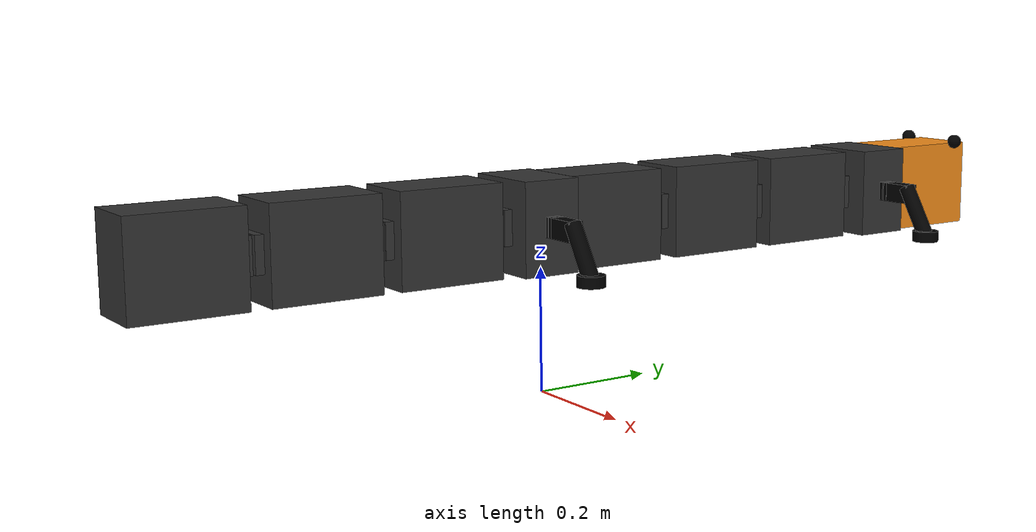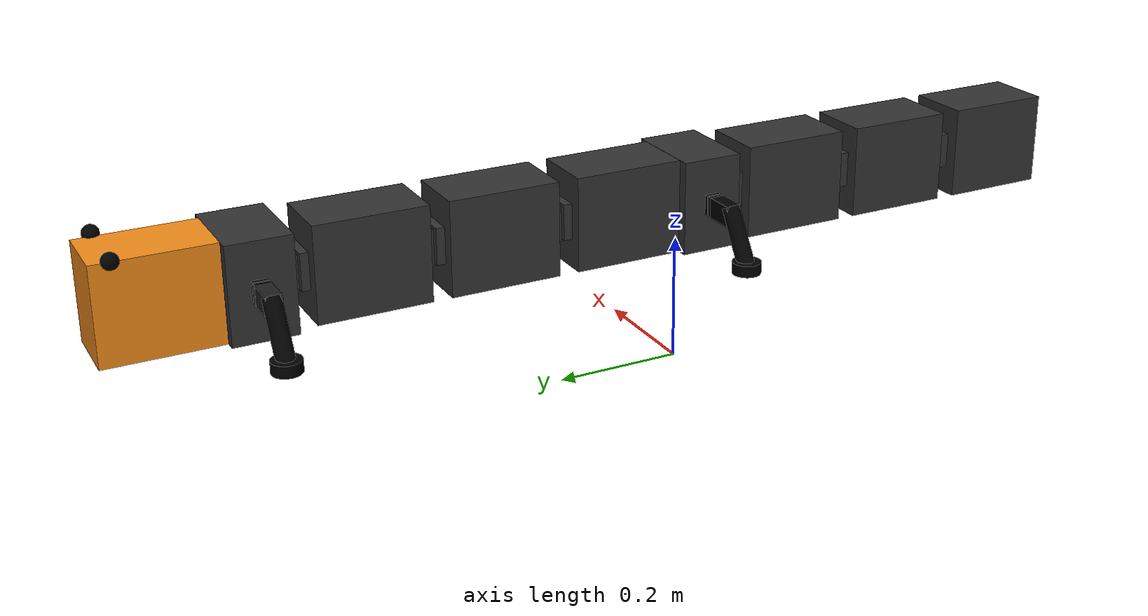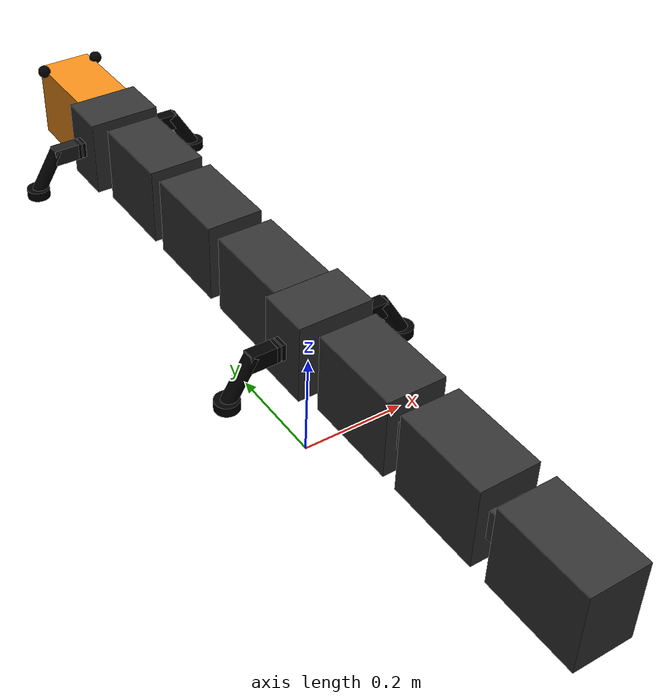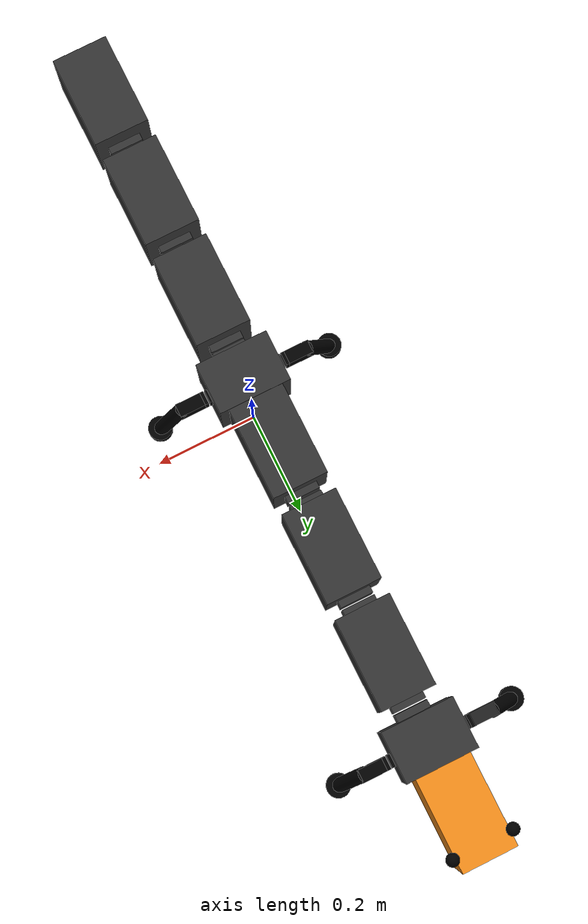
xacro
<?xml version="1.0" ?>
<robot name="rrbot" xmlns:xacro="http://www.ros.org/wiki/xacro">

  <xacro:include filename="$(find rrbot_description)/urdf/rrbot.gazebo" />
  <xacro:include filename="$(find rrbot_description)/urdf/materials.xacro"/>

  <joint name="rrbot__link_0_0_JOINT_2" type="fixed">
    <parent link="rrbot__link_0_0"/>
    <child link="rrbot__link_2_clone_1_clone"/>
    <origin rpy="0       0.54898  0" xyz="-0.03899  0.00105 -0.02898"/>
    <axis xyz="0  0  0"/>
    <limit effort="0" lower="0" upper="0" velocity="0"/>
  </joint>
  <joint name="rrbot__link_0_0_clone_0_JOINT_10" type="fixed">
    <parent link="rrbot__link_0_0_clone_0"/>
    <child link="rrbot__link_2_clone_1_clone_0_clone"/>
    <origin rpy="-4.00000000e-05  -5.49010000e-01   5.00000000e-05" xyz="-0.039    0       0.02898"/>
    <axis xyz="0  0  0"/>
    <limit effort="0" lower="0" upper="0" velocity="0"/>
  </joint>
  <joint name="rrbot__link_0_0_clone_1_JOINT_4" type="fixed">
    <parent link="rrbot__link_0_0_clone_1"/>
    <child link="rrbot__link_2_clone_1_clone_0"/>
    <origin rpy="-4.00000000e-05  -5.49010000e-01   5.00000000e-05" xyz="0.04077  0      -0.02898"/>
    <axis xyz="0  0  0"/>
    <limit effort="0" lower="0" upper="0" velocity="0"/>
  </joint>
  <joint name="rrbot__link_0_0_clone_JOINT_0" type="fixed">
    <parent link="rrbot__link_0_0_clone"/>
    <child link="rrbot__link_2_clone_1"/>
    <origin rpy="0       0.54898  0" xyz="0.03899  0.00105  0.02899"/>
    <axis xyz="0  0  0"/>
    <limit effort="0" lower="0" upper="0" velocity="0"/>
  </joint>
  <joint name="rrbot__limb_joint_1" type="continuous">
    <parent link="rrbot__link_0_0_clone_clone"/>
    <child link="rrbot__link_0_0_clone_clone_clone"/>
    <origin rpy="3.141592  0  0" xyz="0.00928  0.00016  0"/>
    <axis xyz="-1  0  0"/>

  </joint>
  <joint name="rrbot__limb_joint_2" type="continuous">
    <parent link="rrbot__link_0_0_clone_clone_clone_0"/>
    <child link="rrbot__link_0_0_clone_clone_clone_0_clone"/>
    <origin rpy="0  0  0" xyz="-0.00928  0.00016  0"/>
    <axis xyz="-1  0  0"/>

  </joint>
  <joint name="rrbot__link_0_0_clone_clone_clone_0_clone_JOINT_18" type="fixed">
    <parent link="rrbot__link_0_0_clone_clone_clone_0_clone"/>
    <child link="rrbot__link_0_0"/>
    <origin rpy="0  0  0" xyz="-0.02655 -0.00019  0"/>
    <axis xyz="0  0  0"/>
    <limit effort="0" lower="0" upper="0" velocity="0"/>
  </joint>
  <joint name="rrbot__limb_joint_3" type="continuous">
    <parent link="rrbot__link_0_0_clone_clone_clone_1"/>
    <child link="rrbot__link_0_0_clone_clone_clone_clone"/>
    <origin rpy="0  0  0" xyz="8.98000000e-03   0.00000000e+00   8.00000000e-05"/>
    <axis xyz="-1  0  0"/>

  </joint>
  <joint name="rrbot__limb_joint_4" type="continuous">
    <parent link="rrbot__link_0_0_clone_clone_clone_2"/>
    <child link="rrbot__link_0_0_clone_clone_clone_3"/>
    <origin rpy="3.141592  0  0" xyz="-0.00928  0       0"/>
    <axis xyz="-1  0  0"/>

  </joint>
  <joint name="rrbot__link_0_0_clone_clone_clone_3_JOINT_22" type="fixed">
    <parent link="rrbot__link_0_0_clone_clone_clone_3"/>
    <child link="rrbot__link_0_0_clone_0"/>
    <origin rpy="3.00000000e-05   2.00000000e-05  -3.00000000e-05" xyz="-0.02655  0       0"/>
    <axis xyz="0  0  0"/>
    <limit effort="0" lower="0" upper="0" velocity="0"/>
  </joint>
  <joint name="rrbot__link_0_0_clone_clone_clone_JOINT_16" type="fixed">
    <parent link="rrbot__link_0_0_clone_clone_clone"/>
    <child link="rrbot__link_0_0_clone"/>
    <origin rpy="0  0  0" xyz="0.02655 -0.00019  0"/>
    <axis xyz="0  0  0"/>
    <limit effort="0" lower="0" upper="0" velocity="0"/>
  </joint>
  <joint name="rrbot__link_0_0_clone_clone_clone_clone_JOINT_20" type="fixed">
    <parent link="rrbot__link_0_0_clone_clone_clone_clone"/>
    <child link="rrbot__link_0_0_clone_1"/>
    <origin rpy="3.00000000e-05   2.00000000e-05  -3.00000000e-05" xyz="2.71700000e-02   0.00000000e+00  -8.00000000e-05"/>
    <axis xyz="0  0  0"/>
    <limit effort="0" lower="0" upper="0" velocity="0"/>
  </joint>
  <joint name="rrbot__link_0_JOINT_0_0" type="fixed">
    <parent link="rrbot__link_0"/>
    <child link="rrbot__link_3"/>
    <origin rpy="1.00000000e-05   1.00000000e-05  -1.00000000e-05" xyz="-0.05636  0.86928  0.349901"/>
    <axis xyz="0  0  0"/>
    <limit effort="0" lower="0" upper="0" velocity="0"/>
  </joint>
  <joint name="rrbot__link_0_JOINT_0" type="fixed">
    <parent link="rrbot__link_0"/>
    <child link="rrbot__link_0_clone"/>
    <origin rpy="0  0  0" xyz="-4.00000000e-05   6.77990000e-01   0.273561"/>
    <axis xyz="0  0  0"/>
    <limit effort="0" lower="0" upper="0" velocity="0"/>
  </joint>
  <joint name="rrbot__link_0_JOINT_1" type="fixed">
    <parent link="rrbot__link_0"/>
    <child link="rrbot__link_3_clone"/>
    <origin rpy="3.00000000e-05   2.00000000e-05  -3.00000000e-05" xyz="0.05636  0.86928  0.349901"/>
    <axis xyz="0  0  0"/>
    <limit effort="0" lower="0" upper="0" velocity="0"/>
  </joint>
  <joint name="rrbot__link_0_clone_0_JOINT_2_0" type="fixed">
    <parent link="rrbot__link_0_clone_0"/>
    <child link="rrbot__link_0_clone_6_clone_0"/>
    <origin rpy="0       0      -0.00248" xyz="0      -0.09086  0"/>
    <axis xyz="0  0  0"/>
    <limit effort="0" lower="0" upper="0" velocity="0"/>
  </joint>
  <joint name="rrbot__link_0_clone_1_JOINT_4" type="fixed">
    <parent link="rrbot__link_0_clone_1"/>
    <child link="rrbot__link_0_clone_6_clone_2"/>
    <origin rpy="0       0      -0.00248" xyz="0      -0.09257  0"/>
    <axis xyz="0  0  0"/>
    <limit effort="0" lower="0" upper="0" velocity="0"/>
  </joint>
  <joint name="rrbot__link_0_clone_2_JOINT_8" type="fixed">
    <parent link="rrbot__link_0_clone_2"/>
    <child link="rrbot__link_0_clone_clone"/>
    <origin rpy="1.00000000e-05   1.00000000e-05  -1.00000000e-05" xyz="0      -0.13431  0"/>
    <axis xyz="0  0  0"/>
    <limit effort="0" lower="0" upper="0" velocity="0"/>
  </joint>
  <joint name="rrbot__link_0_clone_3_JOINT_9" type="fixed">
    <parent link="rrbot__link_0_clone_3"/>
    <child link="rrbot__link_0_clone_6_clone_6"/>
    <origin rpy="0       0      -0.00248" xyz="0      -0.09278  0"/>
    <axis xyz="0  0  0"/>
    <limit effort="0" lower="0" upper="0" velocity="0"/>
  </joint>
  <joint name="rrbot__link_0_clone_4_JOINT_11" type="fixed">
    <parent link="rrbot__link_0_clone_4"/>
    <child link="rrbot__link_0_clone_6_clone_8"/>
    <origin rpy="0       0      -0.00248" xyz="0     -0.0927  0"/>
    <axis xyz="0  0  0"/>
    <limit effort="0" lower="0" upper="0" velocity="0"/>
  </joint>
  <joint name="rrbot__body_joint_1" type="revolute">
    <parent link="rrbot__link_0_clone_6"/>
    <child link="rrbot__link_0_clone_6_clone"/>
    <origin rpy="0       0      0" xyz="-2.00000000e-05  -1.70600000e-02   0.00000000e+00"/>
    <axis xyz="0  0  1"/>
    <limit effort="2.0" lower="-0.4" upper="0.4" velocity="1.0"/>
  </joint>
  <joint name="rrbot__body_joint_2" type="revolute">
    <parent link="rrbot__link_0_clone_6_clone_0"/>
    <child link="rrbot__link_0_clone_6_clone_1"/>
    <origin rpy="0  0  0" xyz="4.00000000e-05  -1.79300000e-02   0.00000000e+00"/>
    <axis xyz="0  0  1"/>
    <limit effort="2.0" lower="-0.4" upper="0.4" velocity="1.0"/>
  </joint>
  <joint name="rrbot__link_0_clone_6_clone_1_JOINT_3" type="fixed">
    <parent link="rrbot__link_0_clone_6_clone_1"/>
    <child link="rrbot__link_0_clone_1"/>
    <origin rpy="0       0       0.00248" xyz="0.00023 -0.0925   0"/>
    <axis xyz="0  0  0"/>
    <limit effort="0" lower="0" upper="0" velocity="0"/>
  </joint>
  <joint name="rrbot__body_joint_3" type="revolute">
    <parent link="rrbot__link_0_clone_6_clone_2"/>
    <child link="rrbot__link_0_clone_6_clone_3"/>
    <origin rpy="0  0  0" xyz="4.00000000e-05  -1.81600000e-02   0.00000000e+00"/>
    <axis xyz="0  0  1"/>
    <limit effort="2.0" lower="-0.4" upper="0.4" velocity="1.0"/>
  </joint>
  <joint name="rrbot__link_0_clone_6_clone_3_JOINT_6" type="fixed">
    <parent link="rrbot__link_0_clone_6_clone_3"/>
    <child link="rrbot__link_0_clone_2"/>
    <origin rpy="0       0       0.00248" xyz="0.00022 -0.0922   0"/>
    <axis xyz="0  0  0"/>
    <limit effort="0" lower="0" upper="0" velocity="0"/>
  </joint>
  <joint name="rrbot__body_joint_4" type="revolute">
    <parent link="rrbot__link_0_clone_6_clone_4"/>
    <child link="rrbot__link_0_clone_6_clone_5"/>
    <origin rpy="0  0  0" xyz="3.00000000e-05  -1.57100000e-02   0.00000000e+00"/>
    <axis xyz="0  0  1"/>
    <limit effort="2.0" lower="-0.523" upper="0.523" velocity="1.0"/>
  </joint>
  <joint name="rrbot__link_0_clone_6_clone_5_JOINT_8" type="fixed">
    <parent link="rrbot__link_0_clone_6_clone_5"/>
    <child link="rrbot__link_0_clone_3"/>
    <origin rpy="0       0       0.00248" xyz="0.00023 -0.0928   0"/>
    <axis xyz="0  0  0"/>
    <limit effort="0" lower="0" upper="0" velocity="0"/>
  </joint>
  <joint name="rrbot__body_joint_5" type="revolute">
    <parent link="rrbot__link_0_clone_6_clone_6"/>
    <child link="rrbot__link_0_clone_6_clone_7"/>
    <origin rpy="0  0  0" xyz="3.00000000e-05  -1.57500000e-02   0.00000000e+00"/>
    <axis xyz="0  0  1"/>
    <limit effort="1.0" lower="-0.523" upper="0.523" velocity="1.0"/>
  </joint>
  <joint name="rrbot__link_0_clone_6_clone_7_JOINT_10" type="fixed">
    <parent link="rrbot__link_0_clone_6_clone_7"/>
    <child link="rrbot__link_0_clone_4"/>
    <origin rpy="0       0       0.00248" xyz="0.00022 -0.09222  0"/>
    <axis xyz="0  0  0"/>
    <limit effort="0" lower="0" upper="0" velocity="0"/>
  </joint>
  <joint name="rrbot__body_joint_6" type="revolute">
    <parent link="rrbot__link_0_clone_6_clone_8"/>
    <child link="rrbot__link_0_clone_6_clone_9"/>
    <origin rpy="0  0  0" xyz="4.00000000e-05  -1.75300000e-02   0.00000000e+00"/>
    <axis xyz="0  0  1"/>
    <limit effort="1.0" lower="-0.523" upper="0.523" velocity="1.0"/>
  </joint>
  <joint name="rrbot__link_0_clone_6_clone_9_JOINT_12" type="fixed">
    <parent link="rrbot__link_0_clone_6_clone_9"/>
    <child link="rrbot__link_0_clone_5"/>
    <origin rpy="0       0       0.00248" xyz="0.00023 -0.09266  0"/>
    <axis xyz="0  0  0"/>
    <limit effort="0" lower="0" upper="0" velocity="0"/>
  </joint>
  <joint name="rrbot__link_0_clone_6_clone_JOINT_1" type="fixed">
    <parent link="rrbot__link_0_clone_6_clone"/>
    <child link="rrbot__link_0_clone_0"/>
    <origin rpy="0       0       0.00248" xyz="-0.00076 -0.09177  0"/>
    <axis xyz="0  0  0"/>
    <limit effort="0" lower="0" upper="0" velocity="0"/>
  </joint>
  <joint name="rrbot__link_0_clone_JOINT_0_0" type="fixed">
    <parent link="rrbot__link_0_clone"/>
    <child link="rrbot__link_0_clone_6"/>
    <origin rpy="0       0      -0.00124" xyz="0.00103 -0.05492  0"/>
    <axis xyz="0  0  0"/>
    <limit effort="0" lower="0" upper="0" velocity="0"/>
  </joint>
  <joint name="rrbot__link_0_clone_JOINT_0" type="fixed">
    <parent link="rrbot__link_0_clone"/>
    <child link="rrbot__link_0_0_clone_clone_clone_0"/>
    <origin rpy="0  0  0" xyz="-0.07139  0.00369  0.00213"/>
    <axis xyz="0  0  0"/>
    <limit effort="0" lower="0" upper="0" velocity="0"/>
  </joint>
  <joint name="rrbot__link_0_clone_JOINT_3" type="fixed">
    <parent link="rrbot__link_0_clone"/>
    <child link="rrbot__link_0_0_clone_clone"/>
    <origin rpy="0  0  0" xyz="0.07148  0.00369  0.00213"/>
    <axis xyz="0  0  0"/>
    <limit effort="0" lower="0" upper="0" velocity="0"/>
  </joint>
  <joint name="rrbot__link_0_clone_clone_JOINT_0" type="fixed">
    <parent link="rrbot__link_0_clone_clone"/>
    <child link="rrbot__link_0_0_clone_clone_clone_2"/>
    <origin rpy="-1.00000000e-05  -1.00000000e-05   1.00000000e-05" xyz="-0.07139  0.00078  0.00212"/>
    <axis xyz="0  0  0"/>
    <limit effort="0" lower="0" upper="0" velocity="0"/>
  </joint>
  <joint name="rrbot__link_0_clone_clone_JOINT_12" type="fixed">
    <parent link="rrbot__link_0_clone_clone"/>
    <child link="rrbot__link_0_0_clone_clone_clone_1"/>
    <origin rpy="-1.00000000e-05  -1.00000000e-05   1.00000000e-05" xyz="0.06938  0.00078  0.00213"/>
    <axis xyz="0  0  0"/>
    <limit effort="0" lower="0" upper="0" velocity="0"/>
  </joint>
  <joint name="rrbot__link_0_clone_clone_JOINT_7" type="fixed">
    <parent link="rrbot__link_0_clone_clone"/>
    <child link="rrbot__link_0_clone_6_clone_4"/>
    <origin rpy="-2.00000000e-05  -1.00000000e-05  -2.46000000e-03" xyz="0      -0.05485  0"/>
    <axis xyz="0  0  0"/>
    <limit effort="0" lower="0" upper="0" velocity="0"/>
  </joint>
  <joint name="rrbot__link_2_clone_1_JOINT_1" type="fixed">
    <parent link="rrbot__link_2_clone_1"/>
    <child link="rrbot__link_2_clone"/>
    <origin rpy="0      -0.54898  0" xyz="-0.00056  0       0.04497"/>
    <axis xyz="0  0  0"/>
    <limit effort="0" lower="0" upper="0" velocity="0"/>
  </joint>
  <joint name="rrbot__link_2_clone_1_clone_0_JOINT_5" type="fixed">
    <parent link="rrbot__link_2_clone_1_clone_0"/>
    <child link="rrbot__link_2_clone_clone_0"/>
    <origin rpy="0       0.54899  0" xyz="-0.00057  0      -0.04497"/>
    <axis xyz="0  0  0"/>
    <limit effort="0" lower="0" upper="0" velocity="0"/>
  </joint>
  <joint name="rrbot__link_2_clone_1_clone_0_clone_JOINT_11" type="fixed">
    <parent link="rrbot__link_2_clone_1_clone_0_clone"/>
    <child link="rrbot__link_2_clone_clone_0_clone"/>
    <origin rpy="0       0.54899  0" xyz="0.00056  0       0.04497"/>
    <axis xyz="0  0  0"/>
    <limit effort="0" lower="0" upper="0" velocity="0"/>
  </joint>
  <joint name="rrbot__link_2_clone_1_clone_JOINT_3" type="fixed">
    <parent link="rrbot__link_2_clone_1_clone"/>
    <child link="rrbot__link_2_clone_clone"/>
    <origin rpy="0      -0.54898  0" xyz="0.00057  0      -0.04497"/>
    <axis xyz="0  0  0"/>
    <limit effort="0" lower="0" upper="0" velocity="0"/>
  </joint>

  <link name="rrbot__link_0">
    <inertial>
      <mass value="0.7"/>
      <origin rpy="0  0  0" xyz="-4.00000000e-05   8.11790000e-01   0.273561"/>
      <inertia ixx="0.003" ixy="0" ixz="0" iyy="0.00189" iyz="0" izz="0.00224"/>
    </inertial>
    <collision name="rrbot__collision">
      <origin rpy="0  0  0" xyz="-4.00000000e-05   8.11790000e-01   0.273561"/>
      <geometry>
        <box size="0.103506 0.172189 0.147122"/>
      </geometry>
    </collision>
    <visual name="rrbot__visual">
      <origin rpy="0  0  0" xyz="-4.00000000e-05   8.11790000e-01   0.273561"/>
      <geometry>
        <box size="0.103506 0.172189 0.147122"/>
      </geometry>
    </visual>
  </link>

  <link name="rrbot__link_0_0">
    <inertial>
      <mass value="0.04"/>
      <origin rpy="0  0  0" xyz="0  0  0"/>
      <inertia ixx="5.3e-06" ixy="0" ixz="0" iyy="1.2e-05" iyz="0" izz="1e-05"/>
    </inertial>
    <collision name="rrbot__collision">
      <origin rpy="0  0  0" xyz="0  0  0"/>
      <geometry>
        <box size="0.047498 0.023913 0.031645"/>
      </geometry>
    </collision>
    <visual name="rrbot__visual">
      <origin rpy="0  0  0" xyz="0  0  0"/>
      <geometry>
        <box size="0.047498 0.023913 0.031645"/>
      </geometry>
    </visual>
  </link>
  <link name="rrbot__link_0_0_clone">
    <inertial>
      <mass value="0.04"/>
      <origin rpy="0  0  0" xyz="0  0  0"/>
      <inertia ixx="5.3e-06" ixy="0" ixz="0" iyy="1.2e-05" iyz="0" izz="1e-05"/>
    </inertial>
    <collision name="rrbot__collision">
      <origin rpy="0  0  0" xyz="0  0  0"/>
      <geometry>
        <box size="0.047498 0.023913 0.031645"/>
      </geometry>
    </collision>
    <visual name="rrbot__visual_0">
      <origin rpy="0  0  0" xyz="0  0  0"/>
      <geometry>
        <box size="0.047498 0.023913 0.031645"/>
      </geometry>
      <material name="black"/>
    </visual>
  </link>
  <link name="rrbot__link_0_0_clone_0">
    <inertial>
      <mass value="0.04"/>
      <origin rpy="0  0  0" xyz="0  0  0"/>
      <inertia ixx="5.3e-06" ixy="0" ixz="0" iyy="1.2e-05" iyz="0" izz="1e-05"/>
    </inertial>
    <collision name="rrbot__collision">
      <origin rpy="0  0  0" xyz="0  0  0"/>
      <geometry>
        <box size="0.047498 0.023913 0.031645"/>
      </geometry>
    </collision>
    <visual name="rrbot__visual_0">
      <origin rpy="0  0  0" xyz="0  0  0"/>
      <geometry>
        <box size="0.047498 0.023913 0.031645"/>
      </geometry>
      <material name="black"/>
    </visual>
  </link>
  <link name="rrbot__link_0_0_clone_1">
    <inertial>
      <mass value="0.04"/>
      <origin rpy="0  0  0" xyz="0  0  0"/>
      <inertia ixx="5.3e-06" ixy="0" ixz="0" iyy="1.2e-05" iyz="0" izz="1e-05"/>
    </inertial>
    <collision name="rrbot__collision">
      <origin rpy="0  0  0" xyz="0  0  0"/>
      <geometry>
        <box size="0.047498 0.023913 0.031645"/>
      </geometry>
    </collision>
    <visual name="rrbot__visual_0">
      <origin rpy="0  0  0" xyz="0  0  0"/>
      <geometry>
        <box size="0.047498 0.023913 0.031645"/>
      </geometry>
      <material name="black"/>
    </visual>
  </link>
  <link name="rrbot__link_0_0_clone_clone">
    <inertial>
      <mass value="0.005"/>
      <origin rpy="0  0  0" xyz="0  0  0"/>
      <inertia ixx="6.6e-07" ixy="0" ixz="0" iyy="4.6e-07" iyz="0" izz="2.5e-07"/>
    </inertial>
    <collision name="rrbot__collision">
      <origin rpy="0  0  0" xyz="0  0  0"/>
      <geometry>
        <box size="0.00666 0.023913 0.031645"/>
      </geometry>
    </collision>
    <visual name="rrbot__visual_0">
      <origin rpy="0  0  0" xyz="0  0  0"/>
      <geometry>
        <box size="0.00666 0.023913 0.031645"/>
      </geometry>
      <material name="black"/>
    </visual>
  </link>
  <link name="rrbot__link_0_0_clone_clone_clone">
    <inertial>
      <mass value="0.005"/>
      <origin rpy="0  0  0" xyz="0  0  0"/>
      <inertia ixx="6.6e-07" ixy="0" ixz="0" iyy="4.6e-07" iyz="0" izz="2.5e-07"/>
    </inertial>
    <collision name="rrbot__collision">
      <origin rpy="0  0  0" xyz="0  0  0"/>
      <geometry>
        <box size="0.00666 0.023913 0.031645"/>
      </geometry>
    </collision>
    <visual name="rrbot__visual_0">
      <origin rpy="0  0  0" xyz="0  0  0"/>
      <geometry>
        <box size="0.00666 0.023913 0.031645"/>
      </geometry>
      <material name="black"/>
    </visual>
  </link>
  <link name="rrbot__link_0_0_clone_clone_clone_0">
    <inertial>
      <mass value="0.005"/>
      <origin rpy="0  0  0" xyz="0  0  0"/>
      <inertia ixx="6.6e-07" ixy="0" ixz="0" iyy="4.6e-07" iyz="0" izz="2.5e-07"/>
    </inertial>
    <collision name="rrbot__collision">
      <origin rpy="0  0  0" xyz="0  0  0"/>
      <geometry>
        <box size="0.00666 0.023913 0.031645"/>
      </geometry>
    </collision>
    <visual name="rrbot__visual_0">
      <origin rpy="0  0  0" xyz="0  0  0"/>
      <geometry>
        <box size="0.00666 0.023913 0.031645"/>
      </geometry>
      <material name="black"/>
    </visual>
  </link>
  <link name="rrbot__link_0_0_clone_clone_clone_0_clone">
    <inertial>
      <mass value="0.005"/>
      <origin rpy="0  0  0" xyz="0  0  0"/>
      <inertia ixx="6.6e-07" ixy="0" ixz="0" iyy="4.6e-07" iyz="0" izz="2.5e-07"/>
    </inertial>
    <collision name="rrbot__collision">
      <origin rpy="0  0  0" xyz="0  0  0"/>
      <geometry>
        <box size="0.00666 0.023913 0.031645"/>
      </geometry>
    </collision>
    <visual name="rrbot__visual_0">
      <origin rpy="0  0  0" xyz="0  0  0"/>
      <geometry>
        <box size="0.00666 0.023913 0.031645"/>
      </geometry>
      <material name="black"/>
    </visual>
  </link>
  <link name="rrbot__link_0_0_clone_clone_clone_1">
    <inertial>
      <mass value="0.005"/>
      <origin rpy="0  0  0" xyz="0  0  0"/>
      <inertia ixx="6.6e-07" ixy="0" ixz="0" iyy="4.6e-07" iyz="0" izz="2.5e-07"/>
    </inertial>
    <collision name="rrbot__collision">
      <origin rpy="0  0  0" xyz="0  0  0"/>
      <geometry>
        <box size="0.00666 0.023913 0.031645"/>
      </geometry>
    </collision>
    <visual name="rrbot__visual_0">
      <origin rpy="0  0  0" xyz="0  0  0"/>
      <geometry>
        <box size="0.00666 0.023913 0.031645"/>
      </geometry>
      <material name="black"/>
    </visual>
  </link>
  <link name="rrbot__link_0_0_clone_clone_clone_2">
    <inertial>
      <mass value="0.005"/>
      <origin rpy="0  0  0" xyz="0  0  0"/>
      <inertia ixx="6.6e-07" ixy="0" ixz="0" iyy="4.6e-07" iyz="0" izz="2.5e-07"/>
    </inertial>
    <collision name="rrbot__collision">
      <origin rpy="0  0  0" xyz="0  0  0"/>
      <geometry>
        <box size="0.00666 0.023913 0.031645"/>
      </geometry>
    </collision>
    <visual name="rrbot__visual_0">
      <origin rpy="0  0  0" xyz="0  0  0"/>
      <geometry>
        <box size="0.00666 0.023913 0.031645"/>
      </geometry>
      <material name="black"/>
    </visual>
  </link>
  <link name="rrbot__link_0_0_clone_clone_clone_3">
    <inertial>
      <mass value="0.005"/>
      <origin rpy="0  0  0" xyz="0  0  0"/>
      <inertia ixx="6.6e-07" ixy="0" ixz="0" iyy="4.6e-07" iyz="0" izz="2.5e-07"/>
    </inertial>
    <collision name="rrbot__collision">
      <origin rpy="0  0  0" xyz="0  0  0"/>
      <geometry>
        <box size="0.00666 0.023913 0.031645"/>
      </geometry>
    </collision>
    <visual name="rrbot__visual_0">
      <origin rpy="0  0  0" xyz="0  0  0"/>
      <geometry>
        <box size="0.00666 0.023913 0.031645"/>
      </geometry>
      <material name="black"/>
    </visual>
  </link>
  <link name="rrbot__link_0_0_clone_clone_clone_clone">
    <inertial>
      <mass value="0.005"/>
      <origin rpy="0  0  0" xyz="0  0  0"/>
      <inertia ixx="6.6e-07" ixy="0" ixz="0" iyy="4.6e-07" iyz="0" izz="2.5e-07"/>
    </inertial>
    <collision name="rrbot__collision">
      <origin rpy="0  0  0" xyz="0  0  0"/>
      <geometry>
        <box size="0.00666 0.023913 0.031645"/>
      </geometry>
    </collision>
    <visual name="rrbot__visual_0">
      <origin rpy="0  0  0" xyz="0  0  0"/>
      <geometry>
        <box size="0.00666 0.023913 0.031645"/>
      </geometry>
      <material name="black"/>
    </visual>
  </link>
  <link name="rrbot__link_0_clone">
    <inertial>
      <mass value="0.2"/>
      <origin rpy="0  0  0" xyz="0  0  0"/>
      <inertia ixx="0.00054" ixy="0" ixz="0" iyy="0.000684" iyz="0" izz="0.000476"/>
    </inertial>
    <collision name="rrbot__collision">
      <origin rpy="0  0  0" xyz="0  0  0"/>
      <geometry>
        <box size="0.13585 0.095615 0.147122"/>
      </geometry>
    </collision>
    <visual name="rrbot__visual">
      <origin rpy="0  0  0" xyz="0  0  0"/>
      <geometry>
        <box size="0.13585 0.095615 0.147122"/>
      </geometry>
      <material name="grey"/>
    </visual>
  </link>
  <link name="rrbot__link_0_clone_0">
    <inertial>
      <mass value="0.3"/>
      <origin rpy="0  0  0" xyz="0  0  0"/>
      <inertia ixx="0.0013" ixy="0" ixz="0" iyy="0.00081" iyz="0" izz="0.001"/>
    </inertial>
    <collision name="rrbot__collision">
      <origin rpy="0  0  0" xyz="0  0  0"/>
      <geometry>
        <box size="0.103506 0.172189 0.147122"/>
      </geometry>
    </collision>
    <visual name="rrbot__visual">
      <origin rpy="0  0  0" xyz="0  0  0"/>
      <geometry>
        <box size="0.103506 0.172189 0.147122"/>
      </geometry>
      <material name="grey"/>
    </visual>
  </link>
  <link name="rrbot__link_0_clone_1">
    <inertial>
      <mass value="0.2"/>
      <origin rpy="0  0  0" xyz="0  0  0"/>
      <inertia ixx="0.00086" ixy="0" ixz="0" iyy="0.00054" iyz="0" izz="0.00065"/>
    </inertial>
    <collision name="rrbot__collision">
      <origin rpy="0  0  0" xyz="0  0  0"/>
      <geometry>
        <box size="0.103506 0.172189 0.147122"/>
      </geometry>
    </collision>
    <visual name="rrbot__visual">
      <origin rpy="0  0  0" xyz="0  0  0"/>
      <geometry>
        <box size="0.103506 0.172189 0.147122"/>
      </geometry>
      <material name="grey"/>
    </visual>
  </link>
  <link name="rrbot__link_0_clone_2">
    <inertial>
      <mass value="0.2"/>
      <origin rpy="0  0  0" xyz="0  0  0"/>
      <inertia ixx="0.00086" ixy="0" ixz="0" iyy="0.00054" iyz="0" izz="0.00065"/>
    </inertial>
    <collision name="rrbot__collision">
      <origin rpy="0  0  0" xyz="0  0  0"/>
      <geometry>
        <box size="0.103506 0.172189 0.147122"/>
      </geometry>
    </collision>
    <visual name="rrbot__visual">
      <origin rpy="0  0  0" xyz="0  0  0"/>
      <geometry>
        <box size="0.103506 0.172189 0.147122"/>
      </geometry>
      <material name="grey"/>
    </visual>
  </link>
  <link name="rrbot__link_0_clone_3">
    <inertial>
      <mass value="0.15"/>
      <origin rpy="0  0  0" xyz="0  0  0"/>
      <inertia ixx="0.00064" ixy="0" ixz="0" iyy="0.00041" iyz="0" izz="0.00049"/>
    </inertial>
    <collision name="rrbot__collision">
      <origin rpy="0  0  0" xyz="0  0  0"/>
      <geometry>
        <box size="0.103506 0.172189 0.147122"/>
      </geometry>
    </collision>
    <visual name="rrbot__visual">
      <origin rpy="0  0  0" xyz="0  0  0"/>
      <geometry>
        <box size="0.103506 0.172189 0.147122"/>
      </geometry>
      <material name="grey"/>
    </visual>
  </link>
  <link name="rrbot__link_0_clone_4">
    <inertial>
      <mass value="0.15"/>
      <origin rpy="0  0  0" xyz="0  0  0"/>
      <inertia ixx="0.00064" ixy="0" ixz="0" iyy="0.00041" iyz="0" izz="0.00049"/>
    </inertial>
    <collision name="rrbot__collision">
      <origin rpy="0  0  0" xyz="0  0  0"/>
      <geometry>
        <box size="0.103506 0.172189 0.147122"/>
      </geometry>
    </collision>
    <visual name="rrbot__visual">
      <origin rpy="0  0  0" xyz="0  0  0"/>
      <geometry>
        <box size="0.103506 0.172189 0.147122"/>
      </geometry>
      <material name="grey"/>
    </visual>
  </link>
  <link name="rrbot__link_0_clone_5">
    <inertial>
      <mass value="0.15"/>
      <origin rpy="0  0  0" xyz="0  0  0"/>
      <inertia ixx="0.00064" ixy="0" ixz="0" iyy="0.00041" iyz="0" izz="0.00049"/>
    </inertial>
    <collision name="rrbot__collision">
      <origin rpy="0  0  0" xyz="0  0  0"/>
      <geometry>
        <box size="0.103506 0.172189 0.147122"/>
      </geometry>
    </collision>
    <visual name="rrbot__visual">
      <origin rpy="0  0  0" xyz="0  0  0"/>
      <geometry>
        <box size="0.103506 0.172189 0.147122"/>
      </geometry>
      <material name="grey"/>
    </visual>
  </link>
  <link name="rrbot__link_0_clone_6">
    <inertial>
      <mass value="0.01"/>
      <origin rpy="0  0  0" xyz="0  0  0"/>
      <inertia ixx="2.7e-06" ixy="0" ixz="0" iyy="5.8e-06" iyz="0" izz="3.5e-06"/>
    </inertial>
    <collision name="rrbot__collision">
      <origin rpy="0  0  0" xyz="0  0  0"/>
      <geometry>
        <box size="0.061873 0.013761 0.056246"/>
      </geometry>
    </collision>
    <visual name="rrbot__visual">
      <origin rpy="0  0  0" xyz="0  0  0"/>
      <geometry>
        <box size="0.061873 0.013761 0.056246"/>
      </geometry>
      <material name="grey"/>
    </visual>
  </link>
  <link name="rrbot__link_0_clone_6_clone">
    <inertial>
      <mass value="0.01"/>
      <origin rpy="0  0  0" xyz="0  0  0"/>
      <inertia ixx="2.7e-06" ixy="0" ixz="0" iyy="5.8e-06" iyz="0" izz="3.5e-06"/>
    </inertial>
    <collision name="rrbot__collision">
      <origin rpy="0  0  0" xyz="0  0  0"/>
      <geometry>
        <box size="0.061873 0.013761 0.056246"/>
      </geometry>
    </collision>
    <visual name="rrbot__visual">
      <origin rpy="0  0  0" xyz="0  0  0"/>
      <geometry>
        <box size="0.061873 0.013761 0.056246"/>
      </geometry>
      <material name="grey"/>
    </visual>
  </link>
  <link name="rrbot__link_0_clone_6_clone_0">
    <inertial>
      <mass value="0.01"/>
      <origin rpy="0  0  0" xyz="0  0  0"/>
      <inertia ixx="2.7e-06" ixy="0" ixz="0" iyy="5.8e-06" iyz="0" izz="3.5e-06"/>
    </inertial>
    <collision name="rrbot__collision">
      <origin rpy="0  0  0" xyz="0  0  0"/>
      <geometry>
        <box size="0.061873 0.013761 0.056246"/>
      </geometry>
    </collision>
    <visual name="rrbot__visual">
      <origin rpy="0  0  0" xyz="0  0  0"/>
      <geometry>
        <box size="0.061873 0.013761 0.056246"/>
      </geometry>
      <material name="grey"/>
    </visual>
  </link>
  <link name="rrbot__link_0_clone_6_clone_1">
    <inertial>
      <mass value="0.01"/>
      <origin rpy="0  0  0" xyz="0  0  0"/>
      <inertia ixx="2.7e-06" ixy="0" ixz="0" iyy="5.8e-06" iyz="0" izz="3.5e-06"/>
    </inertial>
    <collision name="rrbot__collision">
      <origin rpy="0  0  0" xyz="0  0  0"/>
      <geometry>
        <box size="0.061873 0.013761 0.056246"/>
      </geometry>
    </collision>
    <visual name="rrbot__visual">
      <origin rpy="0  0  0" xyz="0  0  0"/>
      <geometry>
        <box size="0.061873 0.013761 0.056246"/>
      </geometry>
      <material name="grey"/>
    </visual>
  </link>
  <link name="rrbot__link_0_clone_6_clone_2">
    <inertial>
      <mass value="0.01"/>
      <origin rpy="0  0  0" xyz="0  0  0"/>
      <inertia ixx="2.7e-06" ixy="0" ixz="0" iyy="5.8e-06" iyz="0" izz="3.5e-06"/>
    </inertial>
    <collision name="rrbot__collision">
      <origin rpy="0  0  0" xyz="0  0  0"/>
      <geometry>
        <box size="0.061873 0.013761 0.056246"/>
      </geometry>
    </collision>
    <visual name="rrbot__visual">
      <origin rpy="0  0  0" xyz="0  0  0"/>
      <geometry>
        <box size="0.061873 0.013761 0.056246"/>
      </geometry>
      <material name="grey"/>
    </visual>
  </link>
  <link name="rrbot__link_0_clone_6_clone_3">
    <inertial>
      <mass value="0.01"/>
      <origin rpy="0  0  0" xyz="0  0  0"/>
      <inertia ixx="2.7e-06" ixy="0" ixz="0" iyy="5.8e-06" iyz="0" izz="3.5e-06"/>
    </inertial>
    <collision name="rrbot__collision">
      <origin rpy="0  0  0" xyz="0  0  0"/>
      <geometry>
        <box size="0.061873 0.013761 0.056246"/>
      </geometry>
    </collision>
    <visual name="rrbot__visual">
      <origin rpy="0  0  0" xyz="0  0  0"/>
      <geometry>
        <box size="0.061873 0.013761 0.056246"/>
      </geometry>
      <material name="grey"/>
    </visual>
  </link>
  <link name="rrbot__link_0_clone_6_clone_4">
    <inertial>
      <mass value="0.01"/>
      <origin rpy="0  0  0" xyz="0  0  0"/>
      <inertia ixx="2.7e-06" ixy="0" ixz="0" iyy="5.8e-06" iyz="0" izz="3.5e-06"/>
    </inertial>
    <collision name="rrbot__collision">
      <origin rpy="0  0  0" xyz="0  0  0"/>
      <geometry>
        <box size="0.061873 0.013761 0.056246"/>
      </geometry>
    </collision>
    <visual name="rrbot__visual">
      <origin rpy="0  0  0" xyz="0  0  0"/>
      <geometry>
        <box size="0.061873 0.013761 0.056246"/>
      </geometry>
      <material name="grey"/>
    </visual>
  </link>
  <link name="rrbot__link_0_clone_6_clone_5">
    <inertial>
      <mass value="0.01"/>
      <origin rpy="0  0  0" xyz="0  0  0"/>
      <inertia ixx="2.7e-06" ixy="0" ixz="0" iyy="5.8e-06" iyz="0" izz="3.5e-06"/>
    </inertial>
    <collision name="rrbot__collision">
      <origin rpy="0  0  0" xyz="0  0  0"/>
      <geometry>
        <box size="0.061873 0.013761 0.056246"/>
      </geometry>
    </collision>
    <visual name="rrbot__visual">
      <origin rpy="0  0  0" xyz="0  0  0"/>
      <geometry>
        <box size="0.061873 0.013761 0.056246"/>
      </geometry>
      <material name="grey"/>
    </visual>
  </link>
  <link name="rrbot__link_0_clone_6_clone_6">
    <inertial>
      <mass value="0.01"/>
      <origin rpy="0  0  0" xyz="0  0  0"/>
      <inertia ixx="2.7e-06" ixy="0" ixz="0" iyy="5.8e-06" iyz="0" izz="3.5e-06"/>
    </inertial>
    <collision name="rrbot__collision">
      <origin rpy="0  0  0" xyz="0  0  0"/>
      <geometry>
        <box size="0.061873 0.013761 0.056246"/>
      </geometry>
    </collision>
    <visual name="rrbot__visual">
      <origin rpy="0  0  0" xyz="0  0  0"/>
      <geometry>
        <box size="0.061873 0.013761 0.056246"/>
      </geometry>
      <material name="grey"/>
    </visual>
  </link>
  <link name="rrbot__link_0_clone_6_clone_7">
    <inertial>
      <mass value="0.01"/>
      <origin rpy="0  0  0" xyz="0  0  0"/>
      <inertia ixx="2.7e-06" ixy="0" ixz="0" iyy="5.8e-06" iyz="0" izz="3.5e-06"/>
    </inertial>
    <collision name="rrbot__collision">
      <origin rpy="0  0  0" xyz="0  0  0"/>
      <geometry>
        <box size="0.061873 0.013761 0.056246"/>
      </geometry>
    </collision>
    <visual name="rrbot__visual">
      <origin rpy="0  0  0" xyz="0  0  0"/>
      <geometry>
        <box size="0.061873 0.013761 0.056246"/>
      </geometry>
      <material name="grey"/>
    </visual>
  </link>
  <link name="rrbot__link_0_clone_6_clone_8">
    <inertial>
      <mass value="0.01"/>
      <origin rpy="0  0  0" xyz="0  0  0"/>
      <inertia ixx="2.7e-06" ixy="0" ixz="0" iyy="5.8e-06" iyz="0" izz="3.5e-06"/>
    </inertial>
    <collision name="rrbot__collision">
      <origin rpy="0  0  0" xyz="0  0  0"/>
      <geometry>
        <box size="0.061873 0.013761 0.056246"/>
      </geometry>
    </collision>
    <visual name="rrbot__visual">
      <origin rpy="0  0  0" xyz="0  0  0"/>
      <geometry>
        <box size="0.061873 0.013761 0.056246"/>
      </geometry>
      <material name="grey"/>
    </visual>
  </link>
  <link name="rrbot__link_0_clone_6_clone_9">
    <inertial>
      <mass value="0.01"/>
      <origin rpy="0  0  0" xyz="0  0  0"/>
      <inertia ixx="2.7e-06" ixy="0" ixz="0" iyy="5.8e-06" iyz="0" izz="3.5e-06"/>
    </inertial>
    <collision name="rrbot__collision">
      <origin rpy="0  0  0" xyz="0  0  0"/>
      <geometry>
        <box size="0.061873 0.013761 0.056246"/>
      </geometry>
    </collision>
    <visual name="rrbot__visual">
      <origin rpy="0  0  0" xyz="0  0  0"/>
      <geometry>
        <box size="0.061873 0.013761 0.056246"/>
      </geometry>
      <material name="grey"/>
    </visual>
  </link>
  <link name="rrbot__link_0_clone_clone">
    <inertial>
      <mass value="0.1"/>
      <origin rpy="0  0  0" xyz="0  0  0"/>
      <inertia ixx="0.00027" ixy="0" ixz="0" iyy="0.000342" iyz="0" izz="0.000238"/>
    </inertial>
    <collision name="rrbot__collision">
      <origin rpy="0  0  0" xyz="0  0  0"/>
      <geometry>
        <box size="0.13585 0.095615 0.147122"/>
      </geometry>
    </collision>
    <visual name="rrbot__visual">
      <origin rpy="0  0  0" xyz="0  0  0"/>
      <geometry>
        <box size="0.13585 0.095615 0.147122"/>
      </geometry>
      <material name="grey"/>
    </visual>
  </link>
  <link name="rrbot__link_2_clone">
    <inertial>
      <mass value="0.02"/>
      <origin rpy="0  0  0" xyz="0  0  0"/>
      <inertia ixx="1.7e-06" ixy="0" ixz="0" iyy="1.7e-06" iyz="0" izz="1.7e-06"/>
    </inertial>
    <collision name="rrbot__collision">
      <origin rpy="0  0  0" xyz="0  0  0"/>
      <geometry>
        <cylinder length="0.018" radius="0.0217706"/>
      </geometry>
    </collision>
    <visual name="rrbot__visual">
      <origin rpy="0  0  0" xyz="0  0  0"/>
      <geometry>
        <cylinder length="0.018" radius="0.0217706"/>
      </geometry>
      <material name="black"/>
    </visual>
  </link>
  <link name="rrbot__link_2_clone_1">
    <inertial>
      <mass value="0.03"/>
      <origin rpy="0  0  0" xyz="0  0  0"/>
      <inertia ixx="0.0001" ixy="0" ixz="0" iyy="0.0001" iyz="0" izz="0.0001"/>
    </inertial>
    <collision name="rrbot__collision">
      <origin rpy="0  0  0" xyz="0  0  0"/>
      <geometry>
        <cylinder length="0.092439" radius="0.013308"/>
      </geometry>
    </collision>
    <visual name="rrbot__visual">
      <origin rpy="0  0  0" xyz="0  0  0"/>
      <geometry>
        <cylinder length="0.093809" radius="0.013308"/>
      </geometry>
      <material name="black"/>
    </visual>
  </link>
  <link name="rrbot__link_2_clone_1_clone">
    <inertial>
      <mass value="0.03"/>
      <origin rpy="0  0  0" xyz="0  0  0"/>
      <inertia ixx="0.0001" ixy="0" ixz="0" iyy="0.0001" iyz="0" izz="0.0001"/>
    </inertial>
    <collision name="rrbot__collision">
      <origin rpy="0  0  0" xyz="0  0  0"/>
      <geometry>
        <cylinder length="0.092439" radius="0.013308"/>
      </geometry>
    </collision>
    <visual name="rrbot__visual">
      <origin rpy="0  0  0" xyz="0  0  0"/>
      <geometry>
        <cylinder length="0.093809" radius="0.013308"/>
      </geometry>
      <material name="black"/>
    </visual>
  </link>
  <link name="rrbot__link_2_clone_1_clone_0">
    <inertial>
      <mass value="0.03"/>
      <origin rpy="0  0  0" xyz="0  0  0"/>
      <inertia ixx="0.0001" ixy="0" ixz="0" iyy="0.0001" iyz="0" izz="0.0001"/>
    </inertial>
    <collision name="rrbot__collision">
      <origin rpy="0  0  0" xyz="0  0  0"/>
      <geometry>
        <cylinder length="0.092439" radius="0.013308"/>
      </geometry>
    </collision>
    <visual name="rrbot__visual">
      <origin rpy="0  0  0" xyz="0  0  0"/>
      <geometry>
        <cylinder length="0.093809" radius="0.013308"/>
      </geometry>
      <material name="black"/>
    </visual>
  </link>
  <link name="rrbot__link_2_clone_1_clone_0_clone">
    <inertial>
      <mass value="0.03"/>
      <origin rpy="0  0  0" xyz="0  0  0"/>
      <inertia ixx="0.0001" ixy="0" ixz="0" iyy="0.0001" iyz="0" izz="0.0001"/>
    </inertial>
    <collision name="rrbot__collision">
      <origin rpy="0  0  0" xyz="0  0  0"/>
      <geometry>
        <cylinder length="0.092439" radius="0.013308"/>
      </geometry>
    </collision>
    <visual name="rrbot__visual">
      <origin rpy="0  0  0" xyz="0  0  0"/>
      <geometry>
        <cylinder length="0.093809" radius="0.013308"/>
      </geometry>
      <material name="black"/>
    </visual>
  </link>
  <link name="rrbot__link_2_clone_clone">
    <inertial>
      <mass value="0.02"/>
      <origin rpy="0  0  0" xyz="0  0  0"/>
      <inertia ixx="1.7e-06" ixy="0" ixz="0" iyy="1.7e-06" iyz="0" izz="1.7e-06"/>
    </inertial>
    <collision name="rrbot__collision">
      <origin rpy="0  0  0" xyz="0  0  0"/>
      <geometry>
        <cylinder length="0.018" radius="0.0217706"/>
      </geometry>
    </collision>
    <visual name="rrbot__visual">
      <origin rpy="0  0  0" xyz="0  0  0"/>
      <geometry>
        <cylinder length="0.018" radius="0.0217706"/>
      </geometry>
      <material name="black"/>
    </visual>
  </link>
  <link name="rrbot__link_2_clone_clone_0">
    <inertial>
      <mass value="0.02"/>
      <origin rpy="0  0  0" xyz="0  0  0"/>
      <inertia ixx="1.7e-06" ixy="0" ixz="0" iyy="1.7e-06" iyz="0" izz="1.7e-06"/>
    </inertial>
    <collision name="rrbot__collision">
      <origin rpy="0  0  0" xyz="0  0  0"/>
      <geometry>
        <cylinder length="0.018" radius="0.0217706"/>
      </geometry>
    </collision>
    <visual name="rrbot__visual">
      <origin rpy="0  0  0" xyz="0  0  0"/>
      <geometry>
        <cylinder length="0.018" radius="0.0217706"/>
      </geometry>
      <material name="black"/>
    </visual>
  </link>
  <link name="rrbot__link_2_clone_clone_0_clone">
    <inertial>
      <mass value="0.02"/>
      <origin rpy="0  0  0" xyz="0  0  0"/>
      <inertia ixx="1.7e-06" ixy="0" ixz="0" iyy="1.7e-06" iyz="0" izz="1.7e-06"/>
    </inertial>
    <collision name="rrbot__collision">
      <origin rpy="0  0  0" xyz="0  0  0"/>
      <geometry>
        <cylinder length="0.018" radius="0.0217706"/>
      </geometry>
    </collision>
    <visual name="rrbot__visual">
      <origin rpy="0  0  0" xyz="0  0  0"/>
      <geometry>
        <cylinder length="0.018" radius="0.0217706"/>
      </geometry>
      <material name="black"/>
    </visual>
  </link>
  <link name="rrbot__link_3">
    <inertial>
      <mass value="1.433e-05"/>
      <origin rpy="0  0  0" xyz="0  0  0"/>
      <inertia ixx="0" ixy="0" ixz="0" iyy="0" iyz="0" izz="0"/>
    </inertial>
    <collision name="rrbot__collision">
      <origin rpy="0  0  0" xyz="0  0  0"/>
      <geometry>
        <sphere radius="0.012144"/>
      </geometry>
    </collision>
    <visual name="rrbot__visual">
      <origin rpy="0  0  0" xyz="0  0  0"/>
      <geometry>
        <sphere radius="0.0121437"/>
      </geometry>
      <material name="black"/>
    </visual>
  </link>
  <link name="rrbot__link_3_clone">
    <inertial>
      <mass value="1.433e-05"/>
      <origin rpy="0  0  0" xyz="0  0  0"/>
      <inertia ixx="0" ixy="0" ixz="0" iyy="0" iyz="0" izz="0"/>
    </inertial>
    <collision name="rrbot__collision">
      <origin rpy="0  0  0" xyz="0  0  0"/>
      <geometry>
        <sphere radius="0.012144"/>
      </geometry>
    </collision>
    <visual name="rrbot__visual">
      <origin rpy="0  0  0" xyz="0  0  0"/>
      <geometry>
        <sphere radius="0.0121437"/>
      </geometry>
      <material name="black">
    	<color rgba="0.0 0.0 0.0 1.0"/>
      </material>
    </visual>
  </link>

  <transmission name="tran_limb1">
    <type>transmission_interface/SimpleTransmission</type>
    <joint name="rrbot__limb_joint_1">
      <hardwareInterface>hardware_interface/EffortJointInterface</hardwareInterface>
    </joint>
    <actuator name="rrbot__limb_joint_1">
      <hardwareInterface>hardware_interface/EffortJointInterface</hardwareInterface>
      <mechanicalReduction>100</mechanicalReduction>
    </actuator>
 </transmission>

  <transmission name="tran_limb_2">
    <type>transmission_interface/SimpleTransmission</type>
    <joint name="rrbot__limb_joint_2">
      <hardwareInterface>hardware_interface/EffortJointInterface</hardwareInterface>
    </joint>
    <actuator name="rrbot__limb_joint_2">
      <hardwareInterface>hardware_interface/EffortJointInterface</hardwareInterface>
      <mechanicalReduction>100</mechanicalReduction>
    </actuator>
 </transmission>

  <transmission name="tran_limb_3">
    <type>transmission_interface/SimpleTransmission</type>
    <joint name="rrbot__limb_joint_3">
      <hardwareInterface>hardware_interface/EffortJointInterface</hardwareInterface>
    </joint>
    <actuator name="rrbot__limb_joint_3">
      <hardwareInterface>hardware_interface/EffortJointInterface</hardwareInterface>
      <mechanicalReduction>100</mechanicalReduction>
    </actuator>
 </transmission>

  <transmission name="tran_limb_4">
    <type>transmission_interface/SimpleTransmission</type>
    <joint name="rrbot__limb_joint_4">
      <hardwareInterface>hardware_interface/EffortJointInterface</hardwareInterface>
    </joint>
    <actuator name="rrbot__limb_joint_4">
      <hardwareInterface>hardware_interface/EffortJointInterface</hardwareInterface>
      <mechanicalReduction>100</mechanicalReduction>
    </actuator>
 </transmission>

  <transmission name="tran_body_1">
    <type>transmission_interface/SimpleTransmission</type>
    <joint name="rrbot__body_joint_1">
      <hardwareInterface>hardware_interface/EffortJointInterface</hardwareInterface>
    </joint>
    <actuator name="rrbot__body_joint_1">
      <hardwareInterface>hardware_interface/EffortJointInterface</hardwareInterface>
      <mechanicalReduction>1</mechanicalReduction>
    </actuator>
 </transmission>

  <transmission name="tran_body_2">
    <type>transmission_interface/SimpleTransmission</type>
    <joint name="rrbot__body_joint_2">
      <hardwareInterface>hardware_interface/EffortJointInterface</hardwareInterface>
    </joint>
    <actuator name="rrbot__body_joint_2">
      <hardwareInterface>hardware_interface/EffortJointInterface</hardwareInterface>
      <mechanicalReduction>1</mechanicalReduction>
    </actuator>
 </transmission>

  <transmission name="tran_body_3">
    <type>transmission_interface/SimpleTransmission</type>
    <joint name="rrbot__body_joint_3">
      <hardwareInterface>hardware_interface/EffortJointInterface</hardwareInterface>
    </joint>
    <actuator name="rrbot__body_joint_3">
      <hardwareInterface>hardware_interface/EffortJointInterface</hardwareInterface>
      <mechanicalReduction>1</mechanicalReduction>
    </actuator>
 </transmission>

  <transmission name="tran_body_4">
    <type>transmission_interface/SimpleTransmission</type>
    <joint name="rrbot__body_joint_4">
      <hardwareInterface>hardware_interface/EffortJointInterface</hardwareInterface>
    </joint>
    <actuator name="rrbot__body_joint_4">
      <hardwareInterface>hardware_interface/EffortJointInterface</hardwareInterface>
      <mechanicalReduction>1</mechanicalReduction>
    </actuator>
 </transmission>

  <transmission name="tran_body_5">
    <type>transmission_interface/SimpleTransmission</type>
    <joint name="rrbot__body_joint_5">
      <hardwareInterface>hardware_interface/EffortJointInterface</hardwareInterface>
    </joint>
    <actuator name="rrbot__body_joint_5">
      <hardwareInterface>hardware_interface/EffortJointInterface</hardwareInterface>
      <mechanicalReduction>1</mechanicalReduction>
    </actuator>
 </transmission>

  <transmission name="tran_body_6">
    <type>transmission_interface/SimpleTransmission</type>
    <joint name="rrbot__body_joint_6">
      <hardwareInterface>hardware_interface/EffortJointInterface</hardwareInterface>
    </joint>
    <actuator name="rrbot__body_joint_6">
      <hardwareInterface>hardware_interface/EffortJointInterface</hardwareInterface>
      <mechanicalReduction>1</mechanicalReduction>
    </actuator>
 </transmission>

</robot>

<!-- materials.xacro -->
<robot>

  <material name="black">
    <color rgba="0.0 0.0 0.0 1.0"/>
  </material>

  <material name="blue">
    <color rgba="0.0 0.0 0.8 1.0"/>
  </material>

  <material name="green">
    <color rgba="0.0 0.8 0.0 1.0"/>
  </material>

  <material name="grey">
    <color rgba="0.2 0.2 0.2 1.0"/>
  </material>

  <material name="orange">
    <color rgba="${255/255} ${108/255} ${10/255} 1.0"/>
  </material>

  <material name="brown">
    <color rgba="${222/255} ${207/255} ${195/255} 1.0"/>
  </material>

  <material name="red">
    <color rgba="0.8 0.0 0.0 1.0"/>
  </material>

  <material name="white">
    <color rgba="1.0 1.0 1.0 1.0"/>
  </material>

  <material name="yellow">
    <color rgba="0.0 1.0 1.0 1.0"/>
  </material>

</robot>
